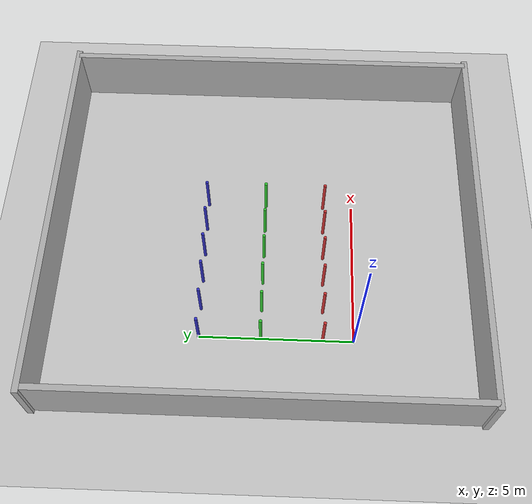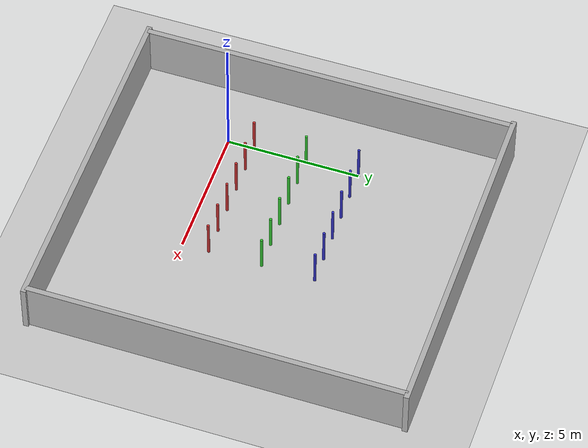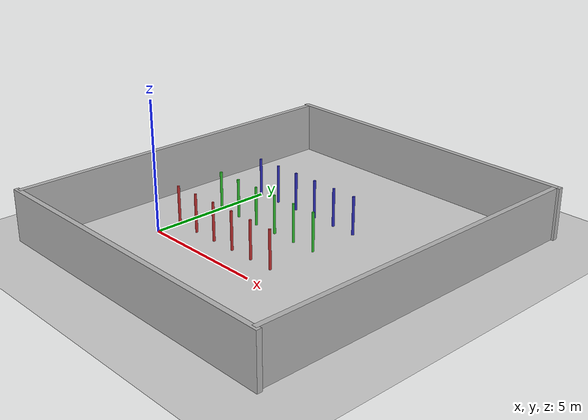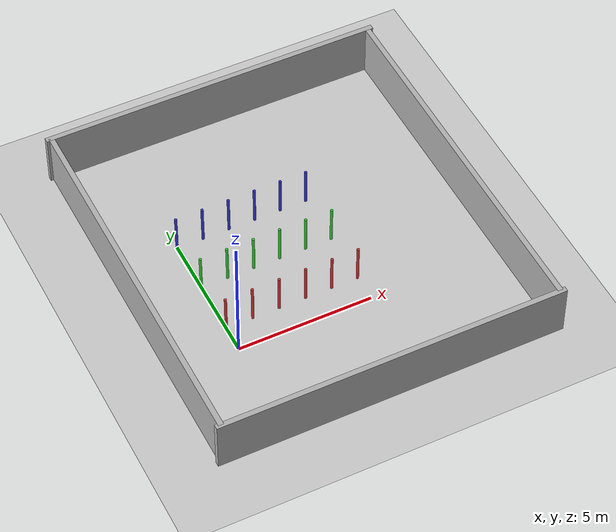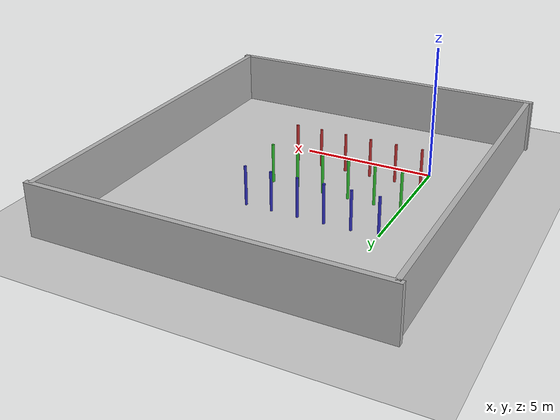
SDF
<sdf version='1.10'>
  <world name='empty'>
    <physics name='1ms' type='ignored'>
      <max_step_size>0.001</max_step_size>
      <real_time_factor>1</real_time_factor>
      <real_time_update_rate>1000</real_time_update_rate>
    </physics>
    <plugin name='gz::sim::systems::Physics' filename='gz-sim-physics-system'/>
    <plugin name='gz::sim::systems::UserCommands' filename='gz-sim-user-commands-system'/>
    <plugin name='gz::sim::systems::Sensors' filename='gz-sim-sensors-system'>
      <render_engine>ogre2</render_engine>
    </plugin>
    <plugin name='gz::sim::systems::SceneBroadcaster' filename='gz-sim-scene-broadcaster-system'/>
    <plugin name='gz::sim::systems::Contact' filename='gz-sim-contact-system'/>
    <gravity>0 0 -9.8000000000000007</gravity>
    <magnetic_field>5.5644999999999998e-06 2.2875799999999999e-05 -4.2388400000000002e-05</magnetic_field>
    <atmosphere type='adiabatic'/>
    <scene>
      <ambient>0.400000006 0.400000006 0.400000006 1</ambient>
      <background>0.699999988 0.699999988 0.699999988 1</background>
      <shadows>true</shadows>
    </scene>
    <model name='ground_plane'>
      <static>true</static>
      <link name='link'>
        <collision name='collision'>
          <geometry>
            <plane>
              <normal>0 0 1</normal>
              <size>100 100</size>
            </plane>
          </geometry>
          <surface>
            <friction>
              <ode/>
            </friction>
            <bounce/>
            <contact/>
          </surface>
        </collision>
        <visual name='visual'>
          <geometry>
            <plane>
              <normal>0 0 1</normal>
              <size>100 100</size>
            </plane>
          </geometry>
          <material>
            <ambient>0.800000012 0.800000012 0.800000012 1</ambient>
            <diffuse>0.800000012 0.800000012 0.800000012 1</diffuse>
            <specular>0.800000012 0.800000012 0.800000012 1</specular>
          </material>
        </visual>
        <pose>0 0 0 0 0 0</pose>
        <inertial>
          <pose>0 0 0 0 0 0</pose>
          <mass>1</mass>
          <inertia>
            <ixx>1</ixx>
            <ixy>0</ixy>
            <ixz>0</ixz>
            <iyy>1</iyy>
            <iyz>0</iyz>
            <izz>1</izz>
          </inertia>
        </inertial>
        <enable_wind>false</enable_wind>
      </link>
      <pose>0 0 0 0 0 0</pose>
      <self_collide>false</self_collide>
    </model>

    <!-- Fila 1 de cilindros -->
    <model name='cylinder_1_1'>
      <static>true</static>
      <pose>0 1 0.75 0 0 0</pose>
      <link name='link'>
        <collision name='collision'>
          <geometry>
            <cylinder>
              <radius>0.05</radius>
              <length>1.5</length>
            </cylinder>
          </geometry>
        </collision>
        <visual name='visual'>
          <geometry>
            <cylinder>
              <radius>0.05</radius>
              <length>1.5</length>
            </cylinder>
          </geometry>
          <material>
            <ambient>0.8 0.2 0.2 1</ambient>
            <diffuse>0.8 0.2 0.2 1</diffuse>
            <specular>0.5 0.5 0.5 1</specular>
          </material>
        </visual>
      </link>
    </model>

    <model name='cylinder_1_2'>
      <static>true</static>
      <pose>1 1 0.75 0 0 0</pose>
      <link name='link'>
        <collision name='collision'>
          <geometry>
            <cylinder>
              <radius>0.05</radius>
              <length>1.5</length>
            </cylinder>
          </geometry>
        </collision>
        <visual name='visual'>
          <geometry>
            <cylinder>
              <radius>0.05</radius>
              <length>1.5</length>
            </cylinder>
          </geometry>
          <material>
            <ambient>0.8 0.2 0.2 1</ambient>
            <diffuse>0.8 0.2 0.2 1</diffuse>
            <specular>0.5 0.5 0.5 1</specular>
          </material>
        </visual>
      </link>
    </model>

    <model name='cylinder_1_3'>
      <static>true</static>
      <pose>2 1 0.75 0 0 0</pose>
      <link name='link'>
        <collision name='collision'>
          <geometry>
            <cylinder>
              <radius>0.05</radius>
              <length>1.5</length>
            </cylinder>
          </geometry>
        </collision>
        <visual name='visual'>
          <geometry>
            <cylinder>
              <radius>0.05</radius>
              <length>1.5</length>
            </cylinder>
          </geometry>
          <material>
            <ambient>0.8 0.2 0.2 1</ambient>
            <diffuse>0.8 0.2 0.2 1</diffuse>
            <specular>0.5 0.5 0.5 1</specular>
          </material>
        </visual>
      </link>
    </model>

    <model name='cylinder_1_4'>
      <static>true</static>
      <pose>3 1 0.75 0 0 0</pose>
      <link name='link'>
        <collision name='collision'>
          <geometry>
            <cylinder>
              <radius>0.05</radius>
              <length>1.5</length>
            </cylinder>
          </geometry>
        </collision>
        <visual name='visual'>
          <geometry>
            <cylinder>
              <radius>0.05</radius>
              <length>1.5</length>
            </cylinder>
          </geometry>
          <material>
            <ambient>0.8 0.2 0.2 1</ambient>
            <diffuse>0.8 0.2 0.2 1</diffuse>
            <specular>0.5 0.5 0.5 1</specular>
          </material>
        </visual>
      </link>
    </model>

    <model name='cylinder_1_5'>
      <static>true</static>
      <pose>4 1 0.75 0 0 0</pose>
      <link name='link'>
        <collision name='collision'>
          <geometry>
            <cylinder>
              <radius>0.05</radius>
              <length>1.5</length>
            </cylinder>
          </geometry>
        </collision>
        <visual name='visual'>
          <geometry>
            <cylinder>
              <radius>0.05</radius>
              <length>1.5</length>
            </cylinder>
          </geometry>
          <material>
            <ambient>0.8 0.2 0.2 1</ambient>
            <diffuse>0.8 0.2 0.2 1</diffuse>
            <specular>0.5 0.5 0.5 1</specular>
          </material>
        </visual>
      </link>
    </model>

    <model name='cylinder_1_6'>
      <static>true</static>
      <pose>5 1 0.75 0 0 0</pose>
      <link name='link'>
        <collision name='collision'>
          <geometry>
            <cylinder>
              <radius>0.05</radius>
              <length>1.5</length>
            </cylinder>
          </geometry>
        </collision>
        <visual name='visual'>
          <geometry>
            <cylinder>
              <radius>0.05</radius>
              <length>1.5</length>
            </cylinder>
          </geometry>
          <material>
            <ambient>0.8 0.2 0.2 1</ambient>
            <diffuse>0.8 0.2 0.2 1</diffuse>
            <specular>0.5 0.5 0.5 1</specular>
          </material>
        </visual>
      </link>
    </model>

    <!-- Fila 2 de cilindros -->
    <model name='cylinder_2_1'>
      <static>true</static>
      <pose>0 3 0.75 0 0 0</pose>
      <link name='link'>
        <collision name='collision'>
          <geometry>
            <cylinder>
              <radius>0.05</radius>
              <length>1.5</length>
            </cylinder>
          </geometry>
        </collision>
        <visual name='visual'>
          <geometry>
            <cylinder>
              <radius>0.05</radius>
              <length>1.5</length>
            </cylinder>
          </geometry>
          <material>
            <ambient>0.2 0.8 0.2 1</ambient>
            <diffuse>0.2 0.8 0.2 1</diffuse>
            <specular>0.5 0.5 0.5 1</specular>
          </material>
        </visual>
      </link>
    </model>

    <model name='cylinder_2_2'>
      <static>true</static>
      <pose>1 3 0.75 0 0 0</pose>
      <link name='link'>
        <collision name='collision'>
          <geometry>
            <cylinder>
              <radius>0.05</radius>
              <length>1.5</length>
            </cylinder>
          </geometry>
        </collision>
        <visual name='visual'>
          <geometry>
            <cylinder>
              <radius>0.05</radius>
              <length>1.5</length>
            </cylinder>
          </geometry>
          <material>
            <ambient>0.2 0.8 0.2 1</ambient>
            <diffuse>0.2 0.8 0.2 1</diffuse>
            <specular>0.5 0.5 0.5 1</specular>
          </material>
        </visual>
      </link>
    </model>

    <model name='cylinder_2_3'>
      <static>true</static>
      <pose>2 3 0.75 0 0 0</pose>
      <link name='link'>
        <collision name='collision'>
          <geometry>
            <cylinder>
              <radius>0.05</radius>
              <length>1.5</length>
            </cylinder>
          </geometry>
        </collision>
        <visual name='visual'>
          <geometry>
            <cylinder>
              <radius>0.05</radius>
              <length>1.5</length>
            </cylinder>
          </geometry>
          <material>
            <ambient>0.2 0.8 0.2 1</ambient>
            <diffuse>0.2 0.8 0.2 1</diffuse>
            <specular>0.5 0.5 0.5 1</specular>
          </material>
        </visual>
      </link>
    </model>

    <model name='cylinder_2_4'>
      <static>true</static>
      <pose>3 3 0.75 0 0 0</pose>
      <link name='link'>
        <collision name='collision'>
          <geometry>
            <cylinder>
              <radius>0.05</radius>
              <length>1.5</length>
            </cylinder>
          </geometry>
        </collision>
        <visual name='visual'>
          <geometry>
            <cylinder>
              <radius>0.05</radius>
              <length>1.5</length>
            </cylinder>
          </geometry>
          <material>
            <ambient>0.2 0.8 0.2 1</ambient>
            <diffuse>0.2 0.8 0.2 1</diffuse>
            <specular>0.5 0.5 0.5 1</specular>
          </material>
        </visual>
      </link>
    </model>

    <model name='cylinder_2_5'>
      <static>true</static>
      <pose>4 3 0.75 0 0 0</pose>
      <link name='link'>
        <collision name='collision'>
          <geometry>
            <cylinder>
              <radius>0.05</radius>
              <length>1.5</length>
            </cylinder>
          </geometry>
        </collision>
        <visual name='visual'>
          <geometry>
            <cylinder>
              <radius>0.05</radius>
              <length>1.5</length>
            </cylinder>
          </geometry>
          <material>
            <ambient>0.2 0.8 0.2 1</ambient>
            <diffuse>0.2 0.8 0.2 1</diffuse>
            <specular>0.5 0.5 0.5 1</specular>
          </material>
        </visual>
      </link>
    </model>

    <model name='cylinder_2_6'>
      <static>true</static>
      <pose>5 3 0.75 0 0 0</pose>
      <link name='link'>
        <collision name='collision'>
          <geometry>
            <cylinder>
              <radius>0.05</radius>
              <length>1.5</length>
            </cylinder>
          </geometry>
        </collision>
        <visual name='visual'>
          <geometry>
            <cylinder>
              <radius>0.05</radius>
              <length>1.5</length>
            </cylinder>
          </geometry>
          <material>
            <ambient>0.2 0.8 0.2 1</ambient>
            <diffuse>0.2 0.8 0.2 1</diffuse>
            <specular>0.5 0.5 0.5 1</specular>
          </material>
        </visual>
      </link>
    </model>

    <!-- Fila 3 de cilindros -->
    <model name='cylinder_3_1'>
      <static>true</static>
      <pose>0 5 0.75 0 0 0</pose>
      <link name='link'>
        <collision name='collision'>
          <geometry>
            <cylinder>
              <radius>0.05</radius>
              <length>1.5</length>
            </cylinder>
          </geometry>
        </collision>
        <visual name='visual'>
          <geometry>
            <cylinder>
              <radius>0.05</radius>
              <length>1.5</length>
            </cylinder>
          </geometry>
          <material>
            <ambient>0.2 0.2 0.8 1</ambient>
            <diffuse>0.2 0.2 0.8 1</diffuse>
            <specular>0.5 0.5 0.5 1</specular>
          </material>
        </visual>
      </link>
    </model>

    <model name='cylinder_3_2'>
      <static>true</static>
      <pose>1 5 0.75 0 0 0</pose>
      <link name='link'>
        <collision name='collision'>
          <geometry>
            <cylinder>
              <radius>0.05</radius>
              <length>1.5</length>
            </cylinder>
          </geometry>
        </collision>
        <visual name='visual'>
          <geometry>
            <cylinder>
              <radius>0.05</radius>
              <length>1.5</length>
            </cylinder>
          </geometry>
          <material>
            <ambient>0.2 0.2 0.8 1</ambient>
            <diffuse>0.2 0.2 0.8 1</diffuse>
            <specular>0.5 0.5 0.5 1</specular>
          </material>
        </visual>
      </link>
    </model>

    <model name='cylinder_3_3'>
      <static>true</static>
      <pose>2 5 0.75 0 0 0</pose>
      <link name='link'>
        <collision name='collision'>
          <geometry>
            <cylinder>
              <radius>0.05</radius>
              <length>1.5</length>
            </cylinder>
          </geometry>
        </collision>
        <visual name='visual'>
          <geometry>
            <cylinder>
              <radius>0.05</radius>
              <length>1.5</length>
            </cylinder>
          </geometry>
          <material>
            <ambient>0.2 0.2 0.8 1</ambient>
            <diffuse>0.2 0.2 0.8 1</diffuse>
            <specular>0.5 0.5 0.5 1</specular>
          </material>
        </visual>
      </link>
    </model>

    <model name='cylinder_3_4'>
      <static>true</static>
      <pose>3 5 0.75 0 0 0</pose>
      <link name='link'>
        <collision name='collision'>
          <geometry>
            <cylinder>
              <radius>0.05</radius>
              <length>1.5</length>
            </cylinder>
          </geometry>
        </collision>
        <visual name='visual'>
          <geometry>
            <cylinder>
              <radius>0.05</radius>
              <length>1.5</length>
            </cylinder>
          </geometry>
          <material>
            <ambient>0.2 0.2 0.8 1</ambient>
            <diffuse>0.2 0.2 0.8 1</diffuse>
            <specular>0.5 0.5 0.5 1</specular>
          </material>
        </visual>
      </link>
    </model>

    <model name='cylinder_3_5'>
      <static>true</static>
      <pose>4 5 0.75 0 0 0</pose>
      <link name='link'>
        <collision name='collision'>
          <geometry>
            <cylinder>
              <radius>0.05</radius>
              <length>1.5</length>
            </cylinder>
          </geometry>
        </collision>
        <visual name='visual'>
          <geometry>
            <cylinder>
              <radius>0.05</radius>
              <length>1.5</length>
            </cylinder>
          </geometry>
          <material>
            <ambient>0.2 0.2 0.8 1</ambient>
            <diffuse>0.2 0.2 0.8 1</diffuse>
            <specular>0.5 0.5 0.5 1</specular>
          </material>
        </visual>
      </link>
    </model>

    <model name='cylinder_3_6'>
      <static>true</static>
      <pose>5 5 0.75 0 0 0</pose>
      <link name='link'>
        <collision name='collision'>
          <geometry>
            <cylinder>
              <radius>0.05</radius>
              <length>1.5</length>
            </cylinder>
          </geometry>
        </collision>
        <visual name='visual'>
          <geometry>
            <cylinder>
              <radius>0.05</radius>
              <length>1.5</length>
            </cylinder>
          </geometry>
          <material>
            <ambient>0.2 0.2 0.8 1</ambient>
            <diffuse>0.2 0.2 0.8 1</diffuse>
            <specular>0.5 0.5 0.5 1</specular>
          </material>
        </visual>
      </link>
    </model>

    <!-- Muro perimetral -->
    <!-- Muro izquierdo -->
    <model name='wall_left'>
      <static>true</static>
      <pose>-2.5 3 1 0 0 0</pose>
      <link name='link'>
        <collision name='collision'>
          <geometry>
            <box>
              <size>0.2 14 2</size>
            </box>
          </geometry>
        </collision>
        <visual name='visual'>
          <geometry>
            <box>
              <size>0.2 14 2</size>
            </box>
          </geometry>
          <material>
            <ambient>0.7 0.7 0.7 1</ambient>
            <diffuse>0.7 0.7 0.7 1</diffuse>
            <specular>0.3 0.3 0.3 1</specular>
          </material>
        </visual>
      </link>
    </model>

    <!-- Muro derecho -->
    <model name='wall_right'>
      <static>true</static>
      <pose>10 3 1 0 0 0</pose>
      <link name='link'>
        <collision name='collision'>
          <geometry>
            <box>
              <size>0.2 14 2</size>
            </box>
          </geometry>
        </collision>
        <visual name='visual'>
          <geometry>
            <box>
              <size>0.2 14 2</size>
            </box>
          </geometry>
          <material>
            <ambient>0.7 0.7 0.7 1</ambient>
            <diffuse>0.7 0.7 0.7 1</diffuse>
            <specular>0.3 0.3 0.3 1</specular>
          </material>
        </visual>
      </link>
    </model>

    <!-- Muro inferior -->
    <model name='wall_bottom'>
      <static>true</static>
      <pose>3.75 -4 1 0 0 0</pose>
      <link name='link'>
        <collision name='collision'>
          <geometry>
            <box>
              <size>12.9 0.2 2</size>
            </box>
          </geometry>
        </collision>
        <visual name='visual'>
          <geometry>
            <box>
              <size>12.9 0.2 2</size>
            </box>
          </geometry>
          <material>
            <ambient>0.7 0.7 0.7 1</ambient>
            <diffuse>0.7 0.7 0.7 1</diffuse>
            <specular>0.3 0.3 0.3 1</specular>
          </material>
        </visual>
      </link>
    </model>

    <!-- Muro superior -->
    <model name='wall_top'>
      <static>true</static>
      <pose>3.75 10 1 0 0 0</pose>
      <link name='link'>
        <collision name='collision'>
          <geometry>
            <box>
              <size>12.9 0.2 2</size>
            </box>
          </geometry>
        </collision>
        <visual name='visual'>
          <geometry>
            <box>
              <size>12.9 0.2 2</size>
            </box>
          </geometry>
          <material>
            <ambient>0.7 0.7 0.7 1</ambient>
            <diffuse>0.7 0.7 0.7 1</diffuse>
            <specular>0.3 0.3 0.3 1</specular>
          </material>
        </visual>
      </link>
    </model>

    <light name='sun' type='directional'>
      <pose>0 0 10 0 0 0</pose>
      <cast_shadows>true</cast_shadows>
      <intensity>1</intensity>
      <direction>-0.5 0.10000000000000001 -0.90000000000000002</direction>
      <diffuse>0.800000012 0.800000012 0.800000012 1</diffuse>
      <specular>0.200000003 0.200000003 0.200000003 1</specular>
      <attenuation>
        <range>1000</range>
        <linear>0.01</linear>
        <constant>0.90000000000000002</constant>
        <quadratic>0.001</quadratic>
      </attenuation>
      <spot>
        <inner_angle>0</inner_angle>
        <outer_angle>0</outer_angle>
        <falloff>0</falloff>
      </spot>
    </light>
  </world>
</sdf>
